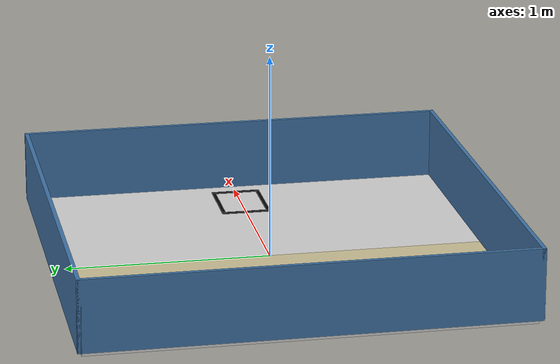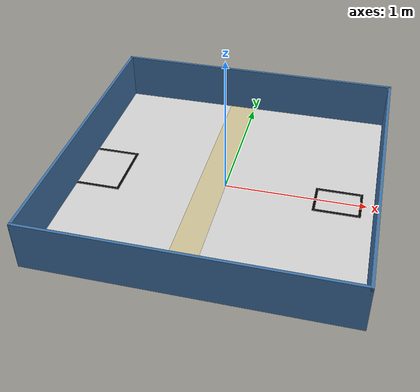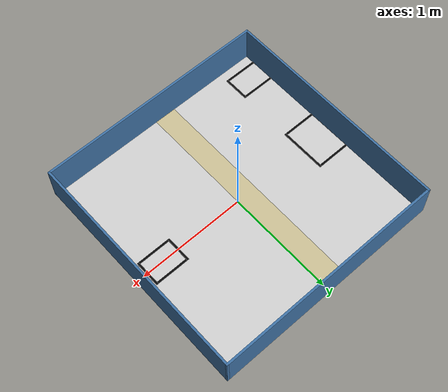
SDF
<?xml version="1.0"?>
<sdf version="1.6">
  <world name="default">
    <plugin name="gazebo_ros_state" filename="libgazebo_ros_state.so">
      <ros><namespace>/gazebo</namespace></ros>
      <update_rate>30.0</update_rate>
    </plugin>

    <include>
      <uri>model://sun</uri>
    </include>
    <include>
      <uri>model://competition_field</uri>
    </include>

    <scene>
      <shadows>false</shadows>
    </scene>

    <gui fullscreen="0">
      <camera name="user_camera">
        <pose>0 0 3.8 0 1.5708 0</pose>
        <view_controller>orbit</view_controller>
        <projection_type>perspective</projection_type>
      </camera>
    </gui>

    <physics type="ode">
      <real_time_update_rate>1000.0</real_time_update_rate>
      <max_step_size>0.001</max_step_size>
      <real_time_factor>1</real_time_factor>
    </physics>
  </world>
</sdf>

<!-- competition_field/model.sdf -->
<sdf version="1.6">
  <model name="competition_field">
    <static>true</static>
    <link name="field_link">
      <collision name="floor_collision">
        <pose>0 0 -0.01 0 0 0</pose>
        <geometry>
          <box>
            <size>2.10 2.10 0.02</size>
          </box>
        </geometry>
      </collision>
      <visual name="floor_visual">
        <pose>0 0 -0.01 0 0 0</pose>
        <geometry>
          <box>
            <size>2.10 2.10 0.02</size>
          </box>
        </geometry>
        <material>
          <ambient>0.82 0.82 0.82 1</ambient>
          <diffuse>0.82 0.82 0.82 1</diffuse>
        </material>
      </visual>

      <visual name="obstacle_region_visual">
        <pose>-0.10 0 0.001 0 0 0</pose>
        <cast_shadows>false</cast_shadows>
        <transparency>0.55</transparency>
        <geometry>
          <box>
            <size>0.20 2.10 0.002</size>
          </box>
        </geometry>
        <material>
          <ambient>0.82 0.72 0.35 1</ambient>
          <diffuse>0.82 0.72 0.35 1</diffuse>
        </material>
      </visual>

      <collision name="wall_x_min_collision">
        <pose>-1.06 0 0.175 0 0 0</pose>
        <geometry>
          <box>
            <size>0.02 2.14 0.35</size>
          </box>
        </geometry>
      </collision>
      <visual name="wall_x_min_visual">
        <pose>-1.06 0 0.175 0 0 0</pose>
        <geometry>
          <box>
            <size>0.02 2.14 0.35</size>
          </box>
        </geometry>
        <material>
          <ambient>0.25 0.45 0.65 1</ambient>
          <diffuse>0.25 0.45 0.65 1</diffuse>
        </material>
      </visual>

      <collision name="wall_x_max_collision">
        <pose>1.06 0 0.175 0 0 0</pose>
        <geometry>
          <box>
            <size>0.02 2.14 0.35</size>
          </box>
        </geometry>
      </collision>
      <visual name="wall_x_max_visual">
        <pose>1.06 0 0.175 0 0 0</pose>
        <geometry>
          <box>
            <size>0.02 2.14 0.35</size>
          </box>
        </geometry>
        <material>
          <ambient>0.25 0.45 0.65 1</ambient>
          <diffuse>0.25 0.45 0.65 1</diffuse>
        </material>
      </visual>

      <collision name="wall_y_min_collision">
        <pose>0 -1.06 0.175 0 0 0</pose>
        <geometry>
          <box>
            <size>2.14 0.02 0.35</size>
          </box>
        </geometry>
      </collision>
      <visual name="wall_y_min_visual">
        <pose>0 -1.06 0.175 0 0 0</pose>
        <geometry>
          <box>
            <size>2.14 0.02 0.35</size>
          </box>
        </geometry>
        <material>
          <ambient>0.25 0.45 0.65 1</ambient>
          <diffuse>0.25 0.45 0.65 1</diffuse>
        </material>
      </visual>

      <collision name="wall_y_max_collision">
        <pose>0 1.06 0.175 0 0 0</pose>
        <geometry>
          <box>
            <size>2.14 0.02 0.35</size>
          </box>
        </geometry>
      </collision>
      <visual name="wall_y_max_visual">
        <pose>0 1.06 0.175 0 0 0</pose>
        <geometry>
          <box>
            <size>2.14 0.02 0.35</size>
          </box>
        </geometry>
        <material>
          <ambient>0.25 0.45 0.65 1</ambient>
          <diffuse>0.25 0.45 0.65 1</diffuse>
        </material>
      </visual>

      <visual name="start_x_min_line">
        <pose>-1.059 -0.845 0.0025 0 0 0</pose>
        <geometry><box><size>0.018 0.246 0.005</size></box></geometry>
        <material><ambient>0.02 0.02 0.02 1</ambient><diffuse>0.02 0.02 0.02 1</diffuse></material>
      </visual>
      <visual name="start_x_max_line">
        <pose>-0.744 -0.845 0.0025 0 0 0</pose>
        <geometry><box><size>0.018 0.246 0.005</size></box></geometry>
        <material><ambient>0.02 0.02 0.02 1</ambient><diffuse>0.02 0.02 0.02 1</diffuse></material>
      </visual>
      <visual name="start_y_min_line">
        <pose>-0.9015 -0.959 0.0025 0 0 0</pose>
        <geometry><box><size>0.297 0.018 0.005</size></box></geometry>
        <material><ambient>0.02 0.02 0.02 1</ambient><diffuse>0.02 0.02 0.02 1</diffuse></material>
      </visual>
      <visual name="start_y_max_line">
        <pose>-0.9015 -0.731 0.0025 0 0 0</pose>
        <geometry><box><size>0.297 0.018 0.005</size></box></geometry>
        <material><ambient>0.02 0.02 0.02 1</ambient><diffuse>0.02 0.02 0.02 1</diffuse></material>
      </visual>

      <visual name="fixed_2_x_min_line">
        <pose>0.644 0 0.0025 0 0 0</pose>
        <geometry><box><size>0.018 0.246 0.005</size></box></geometry>
        <material><ambient>0.02 0.02 0.02 1</ambient><diffuse>0.02 0.02 0.02 1</diffuse></material>
      </visual>
      <visual name="fixed_2_x_max_line">
        <pose>0.959 0 0.0025 0 0 0</pose>
        <geometry><box><size>0.018 0.246 0.005</size></box></geometry>
        <material><ambient>0.02 0.02 0.02 1</ambient><diffuse>0.02 0.02 0.02 1</diffuse></material>
      </visual>
      <visual name="fixed_2_y_min_line">
        <pose>0.8015 -0.114 0.0025 0 0 0</pose>
        <geometry><box><size>0.297 0.018 0.005</size></box></geometry>
        <material><ambient>0.02 0.02 0.02 1</ambient><diffuse>0.02 0.02 0.02 1</diffuse></material>
      </visual>
      <visual name="fixed_2_y_max_line">
        <pose>0.8015 0.114 0.0025 0 0 0</pose>
        <geometry><box><size>0.297 0.018 0.005</size></box></geometry>
        <material><ambient>0.02 0.02 0.02 1</ambient><diffuse>0.02 0.02 0.02 1</diffuse></material>
      </visual>

      <visual name="target_x_min_line">
        <pose>-1.059 0 0.0025 0 0 0</pose>
        <geometry><box><size>0.018 0.436 0.005</size></box></geometry>
        <material><ambient>0.02 0.02 0.02 1</ambient><diffuse>0.02 0.02 0.02 1</diffuse></material>
      </visual>
      <visual name="target_x_max_line">
        <pose>-0.741 0 0.0025 0 0 0</pose>
        <geometry><box><size>0.018 0.436 0.005</size></box></geometry>
        <material><ambient>0.02 0.02 0.02 1</ambient><diffuse>0.02 0.02 0.02 1</diffuse></material>
      </visual>
      <visual name="target_y_min_line">
        <pose>-0.90 -0.209 0.0025 0 0 0</pose>
        <geometry><box><size>0.30 0.018 0.005</size></box></geometry>
        <material><ambient>0.02 0.02 0.02 1</ambient><diffuse>0.02 0.02 0.02 1</diffuse></material>
      </visual>
      <visual name="target_y_max_line">
        <pose>-0.90 0.209 0.0025 0 0 0</pose>
        <geometry><box><size>0.30 0.018 0.005</size></box></geometry>
        <material><ambient>0.02 0.02 0.02 1</ambient><diffuse>0.02 0.02 0.02 1</diffuse></material>
      </visual>
    </link>
  </model>
</sdf>
